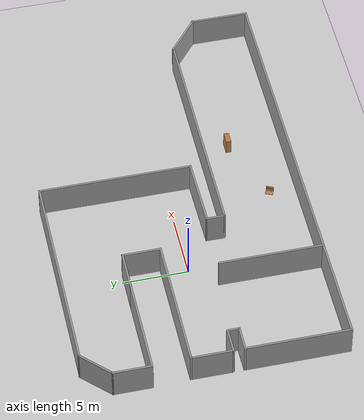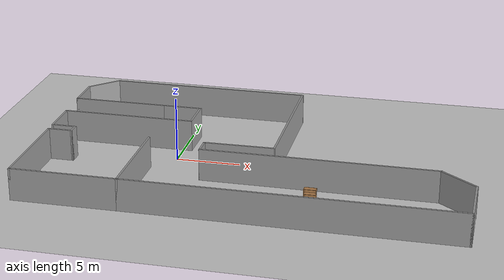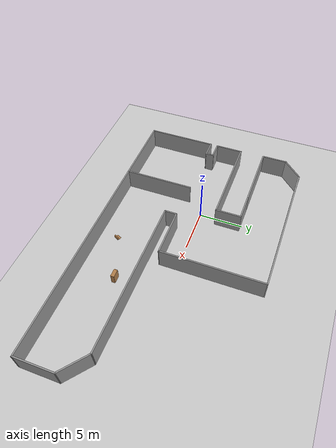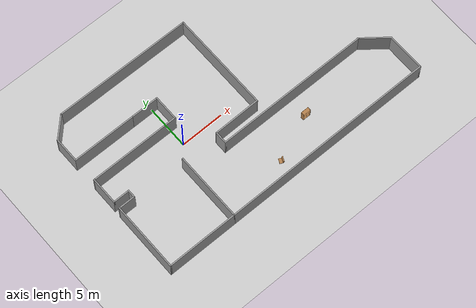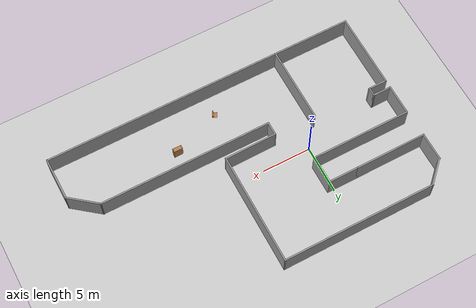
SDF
<sdf version="1.7">
 <world name="default">
  <model name="ground_plane">
   <static>1</static>
   <link name="link">
    <collision name="collision">
     <geometry><plane><normal>0 0 1</normal><size>100 100</size></plane></geometry>
     <surface>
      <contact><collide_bitmask>65535</collide_bitmask></contact>
      <friction><ode><mu>100</mu><mu2>50</mu2></ode></friction>
     </surface>
    </collision>
    <visual name="visual">
     <cast_shadows>0</cast_shadows>
     <geometry><plane><normal>0 0 1</normal><size>100 100</size></plane></geometry>
     <material>
      <script><uri>file://media/materials/scripts/gazebo.material</uri><name>Gazebo/Grey</name></script>
     </material>
    </visual>
   </link>
  </model>
  <model name="Simulated_Room">
   <pose>6.69498 -0.06876 0 0 -0 0</pose>
   <link name="Wall_16">
    <collision name="Wall_16_Collision">
     <geometry><box><size>5.53474 0.15 2.5</size></box></geometry>
     <pose>0 0 1.25 0 -0 0</pose>
    </collision>
    <visual name="Wall_16_Visual">
     <pose>0 0 1.25 0 -0 0</pose>
     <geometry><box><size>5.53474 0.15 2.5</size></box></geometry>
     <material>
      <script><uri>file://media/materials/scripts/gazebo.material</uri><name>Gazebo/Grey</name></script>
      <ambient>1 1 1 1</ambient>
     </material>
     <meta><layer>0</layer></meta>
    </visual>
    <pose>-1.27102 -1.91769 0 0 -0 0.012742</pose>
   </link>
   <link name="Wall_37">
    <collision name="Wall_37_Collision">
     <geometry><box><size>1.5 0.15 2.5</size></box></geometry>
     <pose>0 0 1.25 0 -0 0</pose>
    </collision>
    <visual name="Wall_37_Visual">
     <pose>0 0 1.25 0 -0 0</pose>
     <geometry><box><size>1.5 0.15 2.5</size></box></geometry>
     <material>
      <script><uri>file://media/materials/scripts/gazebo.material</uri><name>Gazebo/Grey</name></script>
      <ambient>1 1 1 1</ambient>
     </material>
     <meta><layer>0</layer></meta>
    </visual>
    <pose>-3.96317 -2.627 0 0 -0 -1.5708</pose>
   </link>
   <link name="Wall_38">
    <collision name="Wall_38_Collision">
     <geometry><box><size>18 0.15 2.5</size></box></geometry>
     <pose>0 0 1.25 0 -0 0</pose>
    </collision>
    <visual name="Wall_38_Visual">
     <pose>0 0 1.25 0 -0 0</pose>
     <geometry><box><size>18 0.15 2.5</size></box></geometry>
     <material>
      <script><uri>file://media/materials/scripts/gazebo.material</uri><name>Gazebo/Grey</name></script>
      <ambient>1 1 1 1</ambient>
     </material>
     <meta><layer>0</layer></meta>
    </visual>
    <pose>4.96183 -3.302 0 0 -0 0</pose>
   </link>
   <link name="Wall_46">
    <collision name="Wall_46_Collision">
     <geometry><box><size>11.75 0.15 2.5</size></box></geometry>
     <pose>0 0 1.25 0 -0 0</pose>
    </collision>
    <visual name="Wall_46_Visual">
     <pose>0 0 1.25 0 -0 0</pose>
     <geometry><box><size>11.75 0.15 2.5</size></box></geometry>
     <material>
      <script><uri>file://media/materials/scripts/gazebo.material</uri><name>Gazebo/Grey</name></script>
      <ambient>1 1 1 1</ambient>
     </material>
     <meta><layer>0</layer></meta>
    </visual>
    <pose>1.42113 3.91661 0 0 -0 1.5708</pose>
   </link>
   <link name="Wall_47">
    <collision name="Wall_47_Collision">
     <geometry><box><size>16.0806 0.15 2.5</size></box></geometry>
     <pose>0 0 1.25 0 -0 0</pose>
    </collision>
    <visual name="Wall_47_Visual">
     <pose>0 0 1.25 0 -0 0</pose>
     <geometry><box><size>16.0806 0.15 2.5</size></box></geometry>
     <material>
      <script><uri>file://media/materials/scripts/gazebo.material</uri><name>Gazebo/Grey</name></script>
      <ambient>1 1 1 1</ambient>
     </material>
     <meta><layer>0</layer></meta>
    </visual>
    <pose>-6.54415 9.72935 0 0 -0 3.13999</pose>
   </link>
   <link name="Wall_51">
    <collision name="Wall_51_Collision">
     <geometry><box><size>3 0.15 2.5</size></box></geometry>
     <pose>0 0 1.25 0 -0 0</pose>
    </collision>
    <visual name="Wall_51_Visual">
     <pose>0 0 1.25 0 -0 0</pose>
     <geometry><box><size>3 0.15 2.5</size></box></geometry>
     <material>
      <script><uri>file://media/materials/scripts/gazebo.material</uri><name>Gazebo/Grey</name></script>
      <ambient>1 1 1 1</ambient>
     </material>
     <meta><layer>0</layer></meta>
    </visual>
    <pose>-15.5171 8.73447 0 0 -0 -2.35619</pose>
   </link>
   <link name="Wall_52">
    <collision name="Wall_52_Collision">
     <geometry><box><size>3 0.15 2.5</size></box></geometry>
     <pose>0 0 1.25 0 -0 0</pose>
    </collision>
    <visual name="Wall_52_Visual">
     <pose>0 0 1.25 0 -0 0</pose>
     <geometry><box><size>3 0.15 2.5</size></box></geometry>
     <material>
      <script><uri>file://media/materials/scripts/gazebo.material</uri><name>Gazebo/Grey</name></script>
      <ambient>1 1 1 1</ambient>
     </material>
     <meta><layer>0</layer></meta>
    </visual>
    <pose>-16.5247 6.30184 0 0 -0 -1.5708</pose>
   </link>
   <link name="Wall_53">
    <collision name="Wall_53_Collision">
     <geometry><box><size>7.5 0.15 2.5</size></box></geometry>
     <pose>0 0 1.25 0 -0 0</pose>
    </collision>
    <visual name="Wall_53_Visual">
     <pose>0 0 1.25 0 -0 0</pose>
     <geometry><box><size>7.5 0.15 2.5</size></box></geometry>
     <material>
      <script><uri>file://media/materials/scripts/gazebo.material</uri><name>Gazebo/Grey</name></script>
      <ambient>1 1 1 1</ambient>
     </material>
     <meta><layer>0</layer></meta>
    </visual>
    <pose>-12.8497 4.87684 0 0 -0 0</pose>
   </link>
   <link name="Wall_54">
    <collision name="Wall_54_Collision">
     <geometry><box><size>3.25 0.15 2.5</size></box></geometry>
     <pose>0 0 1.25 0 -0 0</pose>
    </collision>
    <visual name="Wall_54_Visual">
     <pose>0 0 1.25 0 -0 0</pose>
     <geometry><box><size>3.25 0.15 2.5</size></box></geometry>
     <material>
      <script><uri>file://media/materials/scripts/gazebo.material</uri><name>Gazebo/Grey</name></script>
      <ambient>1 1 1 1</ambient>
     </material>
     <meta><layer>0</layer></meta>
    </visual>
    <pose>-7.62469 4.87684 0 0 -0 0</pose>
   </link>
   <link name="Wall_71">
    <collision name="Wall_71_Collision">
     <geometry><box><size>3 0.15 2.5</size></box></geometry>
     <pose>0 0 1.25 0 -0 0</pose>
    </collision>
    <visual name="Wall_71_Visual">
     <pose>0 0 1.25 0 -0 0</pose>
     <geometry><box><size>3 0.15 2.5</size></box></geometry>
     <material>
      <script><uri>file://media/materials/scripts/gazebo.material</uri><name>Gazebo/Grey</name></script>
      <ambient>1 1 1 1</ambient>
     </material>
     <meta><layer>0</layer></meta>
    </visual>
    <pose>-6.07469 3.45184 0 0 -0 -1.5708</pose>
   </link>
   <link name="Wall_72">
    <collision name="Wall_72_Collision">
     <geometry><box><size>10.5 0.15 2.5</size></box></geometry>
     <pose>0 0 1.25 0 -0 0</pose>
    </collision>
    <visual name="Wall_72_Visual">
     <pose>0 0 1.25 0 -0 0</pose>
     <geometry><box><size>10.5 0.15 2.5</size></box></geometry>
     <material>
      <script><uri>file://media/materials/scripts/gazebo.material</uri><name>Gazebo/Grey</name></script>
      <ambient>1 1 1 1</ambient>
     </material>
     <meta><layer>0</layer></meta>
    </visual>
    <pose>-11.2497 2.02684 0 0 -0 3.14159</pose>
   </link>
   <link name="Wall_73">
    <collision name="Wall_73_Collision">
     <geometry><box><size>3.25 0.15 2.5</size></box></geometry>
     <pose>0 0 1.25 0 -0 0</pose>
    </collision>
    <visual name="Wall_73_Visual">
     <pose>0 0 1.25 0 -0 0</pose>
     <geometry><box><size>3.25 0.15 2.5</size></box></geometry>
     <material>
      <script><uri>file://media/materials/scripts/gazebo.material</uri><name>Gazebo/Grey</name></script>
      <ambient>1 1 1 1</ambient>
     </material>
     <meta><layer>0</layer></meta>
    </visual>
    <pose>-16.4247 0.47684 0 0 -0 -1.5708</pose>
   </link>
   <link name="Wall_74">
    <collision name="Wall_74_Collision">
     <geometry><box><size>2 0.15 2.5</size></box></geometry>
     <pose>0 0 1.25 0 -0 0</pose>
    </collision>
    <visual name="Wall_74_Visual">
     <pose>0 0 1.25 0 -0 0</pose>
     <geometry><box><size>2 0.15 2.5</size></box></geometry>
     <material>
      <script><uri>file://media/materials/scripts/gazebo.material</uri><name>Gazebo/Grey</name></script>
      <ambient>1 1 1 1</ambient>
     </material>
     <meta><layer>0</layer></meta>
    </visual>
    <pose>-15.4997 -1.07316 0 0 -0 0</pose>
   </link>
   <link name="Wall_75">
    <collision name="Wall_75_Collision">
     <geometry><box><size>1 0.15 2.5</size></box></geometry>
     <pose>0 0 1.25 0 -0 0</pose>
    </collision>
    <visual name="Wall_75_Visual">
     <pose>0 0 1.25 0 -0 0</pose>
     <geometry><box><size>1 0.15 2.5</size></box></geometry>
     <material>
      <script><uri>file://media/materials/scripts/gazebo.material</uri><name>Gazebo/Grey</name></script>
      <ambient>1 1 1 1</ambient>
     </material>
     <meta><layer>0</layer></meta>
    </visual>
    <pose>-14.5747 -1.49816 0 0 -0 -1.5708</pose>
   </link>
   <link name="Wall_76">
    <collision name="Wall_76_Collision">
     <geometry><box><size>2 0.15 2.5</size></box></geometry>
     <pose>0 0 1.25 0 -0 0</pose>
    </collision>
    <visual name="Wall_76_Visual">
     <pose>0 0 1.25 0 -0 0</pose>
     <geometry><box><size>2 0.15 2.5</size></box></geometry>
     <material>
      <script><uri>file://media/materials/scripts/gazebo.material</uri><name>Gazebo/Grey</name></script>
      <ambient>1 1 1 1</ambient>
     </material>
     <meta><layer>0</layer></meta>
    </visual>
    <pose>-15.4997 -1.92316 0 0 -0 3.14159</pose>
   </link>
   <link name="Wall_77">
    <collision name="Wall_77_Collision">
     <geometry><box><size>8 0.15 2.5</size></box></geometry>
     <pose>0 0 1.25 0 -0 0</pose>
    </collision>
    <visual name="Wall_77_Visual">
     <pose>0 0 1.25 0 -0 0</pose>
     <geometry><box><size>8 0.15 2.5</size></box></geometry>
     <material>
      <script><uri>file://media/materials/scripts/gazebo.material</uri><name>Gazebo/Grey</name></script>
      <ambient>1 1 1 1</ambient>
     </material>
     <meta><layer>0</layer></meta>
    </visual>
    <pose>-16.4247 -5.84816 0 0 -0 -1.5708</pose>
   </link>
   <link name="Wall_78">
    <collision name="Wall_78_Collision">
     <geometry><box><size>8.25 0.15 2.5</size></box></geometry>
     <pose>0 0 1.25 0 -0 0</pose>
    </collision>
    <visual name="Wall_78_Visual">
     <pose>0 0 1.25 0 -0 0</pose>
     <geometry><box><size>8.25 0.15 2.5</size></box></geometry>
     <material>
      <script><uri>file://media/materials/scripts/gazebo.material</uri><name>Gazebo/Grey</name></script>
      <ambient>1 1 1 1</ambient>
     </material>
     <meta><layer>0</layer></meta>
    </visual>
    <pose>-12.3747 -9.77316 0 0 -0 0</pose>
   </link>
   <link name="Wall_79">
    <collision name="Wall_79_Collision">
     <geometry><box><size>8 0.15 2.5</size></box></geometry>
     <pose>0 0 1.25 0 -0 0</pose>
    </collision>
    <visual name="Wall_79_Visual">
     <pose>0 0 1.25 0 -0 0</pose>
     <geometry><box><size>8 0.15 2.5</size></box></geometry>
     <material>
      <script><uri>file://media/materials/scripts/gazebo.material</uri><name>Gazebo/Grey</name></script>
      <ambient>1 1 1 1</ambient>
     </material>
     <meta><layer>0</layer></meta>
    </visual>
    <pose>-8.32469 -5.84816 0 0 -0 1.5708</pose>
   </link>
   <link name="Wall_88">
    <collision name="Wall_88_Collision">
     <geometry><box><size>25 0.15 2.5</size></box></geometry>
     <pose>0 0 1.25 0 -0 0</pose>
    </collision>
    <visual name="Wall_88_Visual">
     <pose>0 0 1.25 0 -0 0</pose>
     <geometry><box><size>25 0.15 2.5</size></box></geometry>
     <material>
      <script><uri>file://media/materials/scripts/gazebo.material</uri><name>Gazebo/Grey</name></script>
      <ambient>1 1 1 1</ambient>
     </material>
     <meta><layer>0</layer></meta>
    </visual>
    <pose>4.10031 -9.77316 0 0 -0 0</pose>
   </link>
   <link name="Wall_91">
    <collision name="Wall_91_Collision">
     <geometry><box><size>4.5 0.15 2.5</size></box></geometry>
     <pose>0 0 1.25 0 -0 0</pose>
    </collision>
    <visual name="Wall_91_Visual">
     <pose>0 0 1.25 0 -0 0</pose>
     <geometry><box><size>4.5 0.15 2.5</size></box></geometry>
     <material>
      <script><uri>file://media/materials/scripts/gazebo.material</uri><name>Gazebo/Grey</name></script>
      <ambient>1 1 1 1</ambient>
     </material>
     <meta><layer>0</layer></meta>
    </visual>
    <pose>16.5253 -7.59816 0 0 -0 1.5708</pose>
   </link>
   <link name="Wall_92">
    <collision name="Wall_92_Collision">
     <geometry><box><size>3.5354 0.15 2.5</size></box></geometry>
     <pose>0 0 1.25 0 -0 0</pose>
    </collision>
    <visual name="Wall_92_Visual">
     <pose>0 0 1.25 0 -0 0</pose>
     <geometry><box><size>3.5354 0.15 2.5</size></box></geometry>
     <material>
      <script><uri>file://media/materials/scripts/gazebo.material</uri><name>Gazebo/Grey</name></script>
      <ambient>1 1 1 1</ambient>
     </material>
     <meta><layer>0</layer></meta>
    </visual>
    <pose>15.2061 -4.36258 0 0 -0 2.46446</pose>
   </link>
   <static>1</static>
  </model>
  <model name="wooden_case_metal_peg">
   <frame name="wooden_case::__model__" attached_to="wooden_case::base">
    <pose relative_to="__model__">0 0 0 0 -0 0</pose>
   </frame>
   <link name="wooden_case::base">
    <pose relative_to="wooden_case::__model__">0 0 0.024 0 -0 0</pose>
    <inertial>
     <pose>-0.022184 0 0.171592 0 -0 0</pose>
     <mass>3.96264</mass>
     <inertia>
      <ixx>0.213536</ixx>
      <ixy>0</ixy>
      <ixz>0.000779377</ixz>
      <iyy>0.0708943</iyy>
      <iyz>0</iyz>
      <izz>0.154604</izz>
     </inertia>
    </inertial>
    <collision name="collision_back">
     <pose>-0.053975 0 0.1778 0 -0 0</pose>
     <geometry><box><size>0.01905 0.5461 0.3175</size></box></geometry>
     <surface>
      <contact>
       <poissons_ratio>0.347</poissons_ratio>
       <elastic_modulus>8.8e+09</elastic_modulus>
       <ode><kp>100000</kp><kd>100</kd><max_vel>100</max_vel><min_depth>0.001</min_depth></ode>
      </contact>
      <friction>
       <torsional>
        <coefficient>1</coefficient>
        <use_patch_radius>0</use_patch_radius>
        <surface_radius>0.01</surface_radius>
       </torsional>
      </friction>
     </surface>
    </collision>
    <visual name="visual_back">
     <pose>-0.053975 0 0.1778 0 -0 0</pose>
     <geometry><box><size>0.01905 0.5461 0.3175</size></box></geometry>
     <material>
      <script><uri>file://media/materials/scripts/gazebo.material</uri><name>Gazebo/Wood</name></script>
     </material>
    </visual>
    <collision name="collision_bottom">
     <pose>0 0 0.009525 0 -0 0</pose>
     <geometry><box><size>0.127 0.5842 0.01905</size></box></geometry>
     <surface>
      <contact>
       <poissons_ratio>0.347</poissons_ratio>
       <elastic_modulus>8.8e+09</elastic_modulus>
       <ode><kp>100000</kp><kd>100</kd><max_vel>100</max_vel><min_depth>0.001</min_depth></ode>
      </contact>
      <friction>
       <torsional>
        <coefficient>1</coefficient>
        <use_patch_radius>0</use_patch_radius>
        <surface_radius>0.01</surface_radius>
       </torsional>
      </friction>
     </surface>
    </collision>
    <visual name="visual_bottom">
     <pose>0 0 0.009525 0 -0 0</pose>
     <geometry><box><size>0.127 0.5842 0.01905</size></box></geometry>
     <material>
      <script><uri>file://media/materials/scripts/gazebo.material</uri><name>Gazebo/Wood</name></script>
     </material>
    </visual>
    <collision name="collision_top">
     <pose>0 0 0.346075 0 -0 0</pose>
     <geometry><box><size>0.127 0.5842 0.01905</size></box></geometry>
     <surface>
      <contact>
       <poissons_ratio>0.347</poissons_ratio>
       <elastic_modulus>8.8e+09</elastic_modulus>
       <ode><kp>100000</kp><kd>100</kd><max_vel>100</max_vel><min_depth>0.001</min_depth></ode>
      </contact>
      <friction>
       <torsional>
        <coefficient>1</coefficient>
        <use_patch_radius>0</use_patch_radius>
        <surface_radius>0.01</surface_radius>
       </torsional>
      </friction>
     </surface>
    </collision>
    <visual name="visual_top">
     <pose>0 0 0.346075 0 -0 0</pose>
     <geometry><box><size>0.127 0.5842 0.01905</size></box></geometry>
     <material>
      <script><uri>file://media/materials/scripts/gazebo.material</uri><name>Gazebo/Wood</name></script>
     </material>
    </visual>
    <collision name="collision_left">
     <pose>0 -0.282575 0.1778 0 -0 0</pose>
     <geometry><box><size>0.127 0.01905 0.3175</size></box></geometry>
     <surface>
      <contact>
       <poissons_ratio>0.347</poissons_ratio>
       <elastic_modulus>8.8e+09</elastic_modulus>
       <ode><kp>100000</kp><kd>100</kd><max_vel>100</max_vel><min_depth>0.001</min_depth></ode>
      </contact>
      <friction>
       <torsional>
        <coefficient>1</coefficient>
        <use_patch_radius>0</use_patch_radius>
        <surface_radius>0.01</surface_radius>
       </torsional>
      </friction>
     </surface>
    </collision>
    <visual name="visual_left">
     <pose>0 -0.282575 0.1778 0 -0 0</pose>
     <geometry><box><size>0.127 0.01905 0.3175</size></box></geometry>
     <material>
      <script><uri>file://media/materials/scripts/gazebo.material</uri><name>Gazebo/Wood</name></script>
     </material>
    </visual>
    <collision name="collision_right">
     <pose>0 0.282575 0.1778 0 -0 0</pose>
     <geometry><box><size>0.127 0.01905 0.3175</size></box></geometry>
     <surface>
      <contact>
       <poissons_ratio>0.347</poissons_ratio>
       <elastic_modulus>8.8e+09</elastic_modulus>
       <ode><kp>100000</kp><kd>100</kd><max_vel>100</max_vel><min_depth>0.001</min_depth></ode>
      </contact>
      <friction>
       <torsional>
        <coefficient>1</coefficient>
        <use_patch_radius>0</use_patch_radius>
        <surface_radius>0.01</surface_radius>
       </torsional>
      </friction>
     </surface>
    </collision>
    <visual name="visual_right">
     <pose>0 0.282575 0.1778 0 -0 0</pose>
     <geometry><box><size>0.127 0.01905 0.3175</size></box></geometry>
     <material>
      <script><uri>file://media/materials/scripts/gazebo.material</uri><name>Gazebo/Wood</name></script>
     </material>
    </visual>
    <collision name="collision_block_left">
     <pose>0.0095 -0.2151 -0.012 0 -0 0</pose>
     <geometry><box><size>0.108 0.05 0.024</size></box></geometry>
     <surface>
      <contact>
       <poissons_ratio>0.347</poissons_ratio>
       <elastic_modulus>8.8e+09</elastic_modulus>
       <ode><kp>100000</kp><kd>100</kd><max_vel>100</max_vel><min_depth>0.001</min_depth></ode>
      </contact>
      <friction>
       <torsional>
        <coefficient>1</coefficient>
        <use_patch_radius>0</use_patch_radius>
        <surface_radius>0.01</surface_radius>
       </torsional>
      </friction>
     </surface>
    </collision>
    <visual name="visual_block_left">
     <pose>0.0095 -0.2151 -0.012 0 -0 0</pose>
     <geometry><box><size>0.108 0.05 0.024</size></box></geometry>
     <material>
      <script><uri>file://media/materials/scripts/gazebo.material</uri><name>Gazebo/Wood</name></script>
     </material>
    </visual>
    <collision name="collision_block_right">
     <pose>0.0095 0.2151 -0.012 0 -0 0</pose>
     <geometry><box><size>0.108 0.05 0.024</size></box></geometry>
     <surface>
      <contact>
       <poissons_ratio>0.347</poissons_ratio>
       <elastic_modulus>8.8e+09</elastic_modulus>
       <ode><kp>100000</kp><kd>100</kd><max_vel>100</max_vel><min_depth>0.001</min_depth></ode>
      </contact>
      <friction>
       <torsional>
        <coefficient>1</coefficient>
        <use_patch_radius>0</use_patch_radius>
        <surface_radius>0.01</surface_radius>
       </torsional>
      </friction>
     </surface>
    </collision>
    <visual name="visual_block_right">
     <pose>0.0095 0.2151 -0.012 0 -0 0</pose>
     <geometry><box><size>0.108 0.05 0.024</size></box></geometry>
     <material>
      <script><uri>file://media/materials/scripts/gazebo.material</uri><name>Gazebo/Wood</name></script>
     </material>
    </visual>
   </link>
   <link name="wooden_case::lid">
    <pose relative_to="wooden_case::__model__">0.243775 0 0.009525 0 -0 0</pose>
    <inertial>
     <mass>1.97874</mass>
     <inertia>
      <ixx>0.0563367</ixx>
      <ixy>0</ixy>
      <ixz>0</ixz>
      <iyy>0.020911</iyy>
      <iyz>0</iyz>
      <izz>0.0771281</izz>
     </inertia>
    </inertial>
    <collision name="collision">
     <geometry><box><size>0.3556 0.5842 0.01905</size></box></geometry>
     <surface>
      <contact>
       <poissons_ratio>0.347</poissons_ratio>
       <elastic_modulus>8.8e+09</elastic_modulus>
       <ode><kp>100000</kp><kd>100</kd><max_vel>100</max_vel><min_depth>0.001</min_depth></ode>
      </contact>
      <friction>
       <torsional>
        <coefficient>1</coefficient>
        <use_patch_radius>0</use_patch_radius>
        <surface_radius>0.01</surface_radius>
       </torsional>
      </friction>
     </surface>
    </collision>
    <visual name="visual">
     <geometry><box><size>0.3556 0.5842 0.01905</size></box></geometry>
     <material>
      <script><uri>file://media/materials/scripts/gazebo.material</uri><name>Gazebo/Wood</name></script>
     </material>
    </visual>
    <visual name="tee_nut_1">
     <pose>0.122 -0.216 0 0 -0 0</pose>
     <geometry><cylinder><radius>0.00635</radius><length>0.0192405</length></cylinder></geometry>
     <material>
      <script><uri>file://media/materials/scripts/gazebo.material</uri><name>Gazebo/Grey</name></script>
     </material>
    </visual>
    <visual name="tee_nut_2">
     <pose>0.122 -0.088 0 0 -0 0</pose>
     <geometry><cylinder><radius>0.00635</radius><length>0.0192405</length></cylinder></geometry>
     <material>
      <script><uri>file://media/materials/scripts/gazebo.material</uri><name>Gazebo/Grey</name></script>
     </material>
    </visual>
    <visual name="tee_nut_3">
     <pose>0.122 0.088 0 0 -0 0</pose>
     <geometry><cylinder><radius>0.00635</radius><length>0.0192405</length></cylinder></geometry>
     <material>
      <script><uri>file://media/materials/scripts/gazebo.material</uri><name>Gazebo/Grey</name></script>
     </material>
    </visual>
    <visual name="tee_nut_4">
     <pose>0.122 0.216 0 0 -0 0</pose>
     <geometry><cylinder><radius>0.00635</radius><length>0.0192405</length></cylinder></geometry>
     <material>
      <script><uri>file://media/materials/scripts/gazebo.material</uri><name>Gazebo/Grey</name></script>
     </material>
    </visual>
   </link>
   <joint name="wooden_case::lid_hinge" type="revolute">
    <pose>-0.1778 0 0.01905 0 -0 0</pose>
    <parent>wooden_case::base</parent>
    <child>wooden_case::lid</child>
    <axis>
     <xyz>0 1 0</xyz>
     <limit><upper>0.523599</upper><lower>-1.5708</lower></limit>
     <dynamics><spring_reference>0</spring_reference><spring_stiffness>0</spring_stiffness></dynamics>
    </axis>
   </joint>
   <frame name="peg::__model__" attached_to="peg::link">
    <pose relative_to="__model__">0.365774 0.216 0.01905 0 -0 0</pose>
   </frame>
   <link name="peg::link">
    <pose relative_to="peg::__model__">0 0 0.031 0 -0 0</pose>
    <inertial>
     <mass>0.0121</mass>
     <inertia>
      <ixx>3.90898e-06</ixx>
      <ixy>0</ixy>
      <ixz>0</ixz>
      <iyy>3.90898e-06</iyy>
      <iyz>0</iyz>
      <izz>6.58845e-08</izz>
     </inertia>
    </inertial>
    <collision name="collision">
     <geometry><cylinder><radius>0.0033</radius><length>0.062</length></cylinder></geometry>
     <surface>
      <contact>
       <poissons_ratio>0.305</poissons_ratio>
       <elastic_modulus>2e+11</elastic_modulus>
       <ode><kp>100000</kp><kd>100</kd><max_vel>100</max_vel><min_depth>0.001</min_depth></ode>
      </contact>
      <friction>
       <torsional>
        <coefficient>1</coefficient>
        <use_patch_radius>0</use_patch_radius>
        <surface_radius>0.01</surface_radius>
       </torsional>
      </friction>
     </surface>
    </collision>
    <visual name="visual">
     <geometry><cylinder><radius>0.0033</radius><length>0.062</length></cylinder></geometry>
     <material>
      <script><uri>file://media/materials/scripts/gazebo.material</uri><name>Gazebo/Grey</name></script>
     </material>
    </visual>
   </link>
   <joint name="case_peg" type="revolute">
    <child>peg::link</child>
    <parent>wooden_case::lid</parent>
    <axis>
     <xyz>0 0 1</xyz>
     <limit><upper>0</upper><lower>0</lower></limit>
     <dynamics><spring_reference>0</spring_reference><spring_stiffness>0</spring_stiffness></dynamics>
    </axis>
   </joint>
   <pose>6.54839 -7.83742 -0.001057 0 -0.000439 2.7</pose>
  </model>
  <model name="bookshelf_1">
   <static>1</static>
   <link name="link">
    <inertial><mass>1</mass></inertial>
    <collision name="back">
     <pose>0 0.005 0.6 0 -0 0</pose>
     <geometry><box><size>0.9 0.01 1.2</size></box></geometry>
    </collision>
    <visual name="visual1">
     <pose>0 0.005 0.6 0 -0 0</pose>
     <geometry><box><size>0.9 0.01 1.2</size></box></geometry>
     <material>
      <script><uri>file://media/materials/scripts/gazebo.material</uri><name>Gazebo/Wood</name></script>
     </material>
    </visual>
    <collision name="left_side">
     <pose>0.45 -0.195 0.6 0 -0 0</pose>
     <geometry><box><size>0.02 0.4 1.2</size></box></geometry>
    </collision>
    <visual name="visual2">
     <pose>0.45 -0.195 0.6 0 -0 0</pose>
     <geometry><box><size>0.02 0.4 1.2</size></box></geometry>
     <material>
      <script><uri>file://media/materials/scripts/gazebo.material</uri><name>Gazebo/Wood</name></script>
     </material>
    </visual>
    <collision name="right_side">
     <pose>-0.45 -0.195 0.6 0 -0 0</pose>
     <geometry><box><size>0.02 0.4 1.2</size></box></geometry>
    </collision>
    <visual name="visual3">
     <pose>-0.45 -0.195 0.6 0 -0 0</pose>
     <geometry><box><size>0.02 0.4 1.2</size></box></geometry>
     <material>
      <script><uri>file://media/materials/scripts/gazebo.material</uri><name>Gazebo/Wood</name></script>
     </material>
    </visual>
    <collision name="bottom">
     <pose>0 -0.195 0.03 0 -0 0</pose>
     <geometry><box><size>0.88 0.4 0.06</size></box></geometry>
    </collision>
    <visual name="visual4">
     <pose>0 -0.195 0.03 0 -0 0</pose>
     <geometry><box><size>0.88 0.4 0.06</size></box></geometry>
     <material>
      <script><uri>file://media/materials/scripts/gazebo.material</uri><name>Gazebo/Wood</name></script>
     </material>
    </visual>
    <collision name="top">
     <pose>0 -0.195 1.19 0 -0 0</pose>
     <geometry><box><size>0.88 0.4 0.02</size></box></geometry>
    </collision>
    <visual name="visual5">
     <pose>0 -0.195 1.19 0 -0 0</pose>
     <geometry><box><size>0.88 0.4 0.02</size></box></geometry>
     <material>
      <script><uri>file://media/materials/scripts/gazebo.material</uri><name>Gazebo/Wood</name></script>
     </material>
    </visual>
    <collision name="low_shelf">
     <pose>0 -0.195 0.43 0 -0 0</pose>
     <geometry><box><size>0.88 0.4 0.02</size></box></geometry>
    </collision>
    <visual name="visual6">
     <pose>0 -0.195 0.43 0 -0 0</pose>
     <geometry><box><size>0.88 0.4 0.02</size></box></geometry>
     <material>
      <script><uri>file://media/materials/scripts/gazebo.material</uri><name>Gazebo/Wood</name></script>
     </material>
    </visual>
    <collision name="high_shelf">
     <pose>0 -0.195 0.8 0 -0 0</pose>
     <geometry><box><size>0.88 0.4 0.02</size></box></geometry>
    </collision>
    <visual name="visual7">
     <pose>0 -0.195 0.8 0 -0 0</pose>
     <geometry><box><size>0.88 0.4 0.02</size></box></geometry>
     <material>
      <script><uri>file://media/materials/scripts/gazebo.material</uri><name>Gazebo/Wood</name></script>
     </material>
    </visual>
   </link>
   <pose>11.514 -5.4527 0 0 -0 0</pose>
  </model>
 </world>
</sdf>
